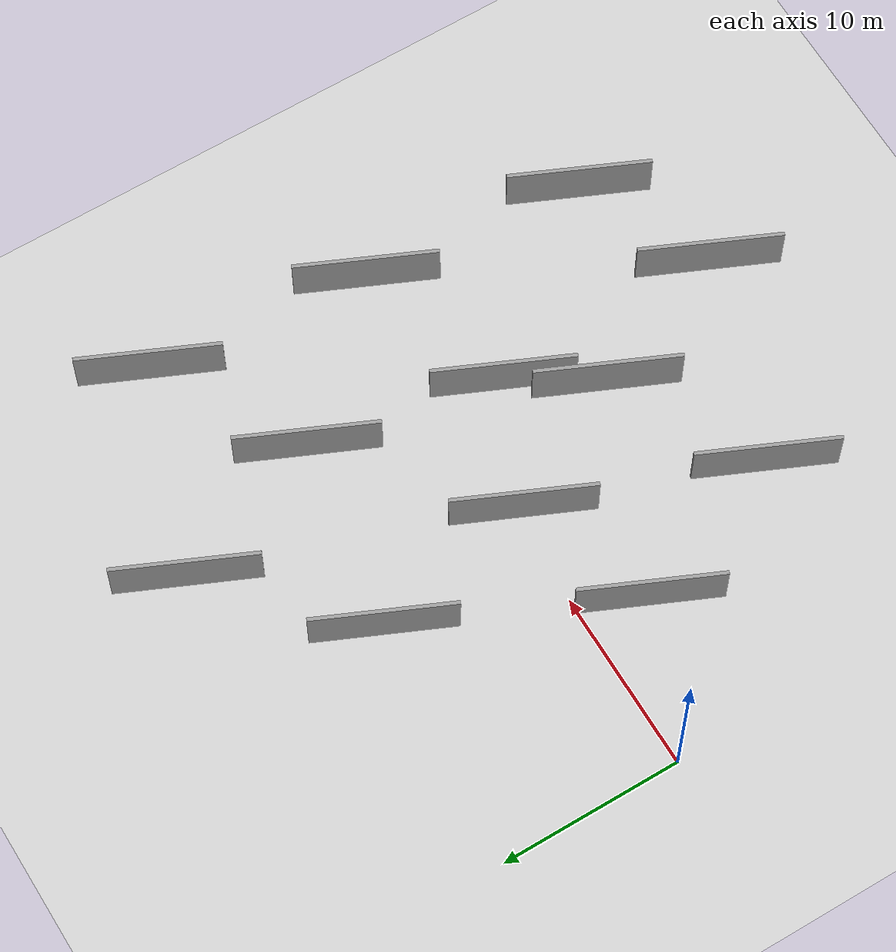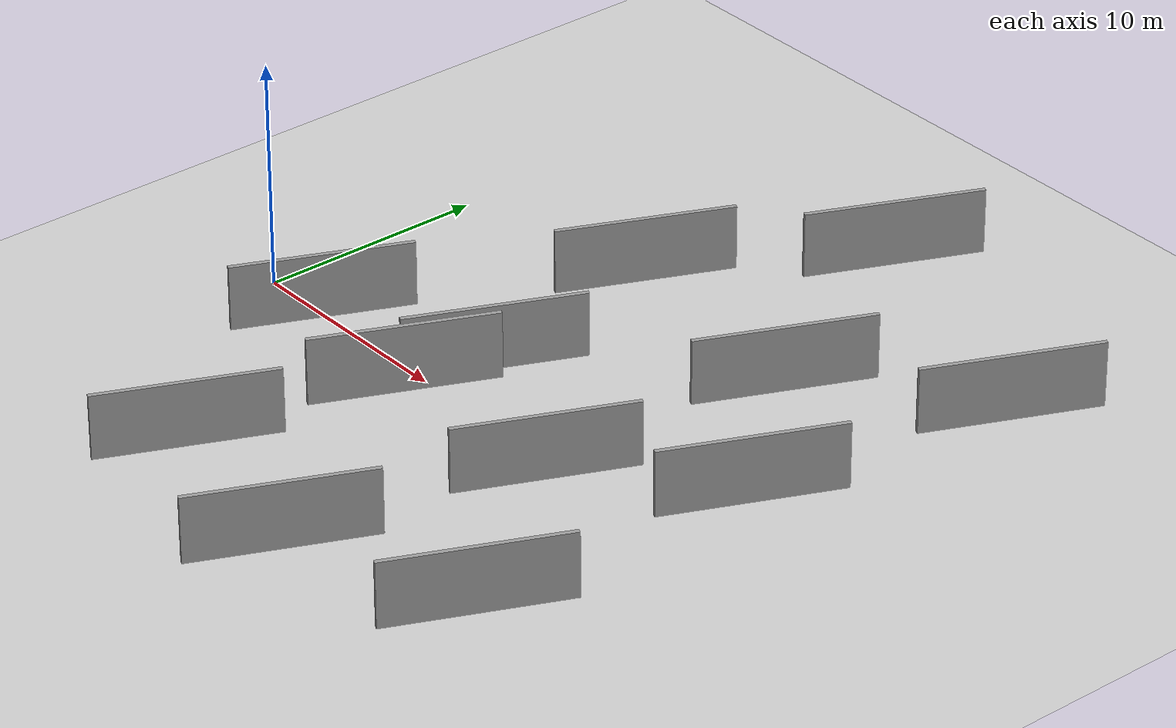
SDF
<sdf version="1.6">
 <world name="default">
  <light name="sun" type="directional">
   <pose>0 0 10 0 -0 0</pose>
   <diffuse>0.8 0.8 0.8 1</diffuse>
   <specular>0.2 0.2 0.2 1</specular>
   <attenuation>
    <range>1000</range>
    <constant>0.9</constant>
    <linear>0.01</linear>
    <quadratic>0.001</quadratic>
   </attenuation>
   <direction>-0.5 0.1 -0.9</direction>
  </light>
  <model name="ground_plane">
   <static>1</static>
   <link name="link">
    <collision name="collision">
     <geometry><plane><normal>0 0 1</normal><size>100 100</size></plane></geometry>
     <surface>
      <contact><collide_bitmask>65535</collide_bitmask></contact>
      <friction><ode><mu>100</mu><mu2>50</mu2></ode></friction>
     </surface>
    </collision>
    <visual name="visual">
     <cast_shadows>0</cast_shadows>
     <geometry><plane><normal>0 0 1</normal><size>100 100</size></plane></geometry>
     <material>
      <script><uri>file://media/materials/scripts/gazebo.material</uri><name>Gazebo/Grey</name></script>
     </material>
    </visual>
   </link>
  </model>
  <gravity>0 0 -9.8</gravity>
  <magnetic_field>6e-06 2.3e-05 -4.2e-05</magnetic_field>
  <atmosphere type="adiabatic"/>
  <physics name="default_physics" default="0" type="ode">
   <max_step_size>0.001</max_step_size>
   <real_time_factor>1</real_time_factor>
   <real_time_update_rate>1000</real_time_update_rate>
  </physics>
  <scene><ambient>0.4 0.4 0.4 1</ambient><background>0.7 0.7 0.7 1</background><shadows>1</shadows></scene>
  <spherical_coordinates>
   <surface_model>EARTH_WGS84</surface_model>
   <latitude_deg>0</latitude_deg>
   <longitude_deg>0</longitude_deg>
   <elevation>0</elevation>
   <heading_deg>0</heading_deg>
  </spherical_coordinates>
  <model name="grey_wall">
   <static>1</static>
   <link name="link">
    <pose>0 0 1.4 0 -0 0</pose>
    <collision name="collision"><geometry><box><size>7.5 0.2 2.8</size></box></geometry></collision>
    <visual name="visual">
     <cast_shadows>0</cast_shadows>
     <geometry><box><size>7.5 0.2 2.8</size></box></geometry>
     <material>
      <script>
       <uri>model://grey_wall/materials/scripts</uri>
       <uri>model://grey_wall/materials/textures</uri>
       <name>vrc/grey_wall</name>
      </script>
     </material>
    </visual>
   </link>
   <pose>6.96939 -2.64592 2.67334 0 -0 1.14782</pose>
  </model>
  <model name="grey_wall_clone">
   <static>1</static>
   <link name="link">
    <pose>0 0 1.4 0 -0 0</pose>
    <collision name="collision"><geometry><box><size>7.5 0.2 2.8</size></box></geometry></collision>
    <visual name="visual">
     <cast_shadows>0</cast_shadows>
     <geometry><box><size>7.5 0.2 2.8</size></box></geometry>
     <material>
      <script>
       <uri>model://grey_wall/materials/scripts</uri>
       <uri>model://grey_wall/materials/textures</uri>
       <name>vrc/grey_wall</name>
      </script>
     </material>
    </visual>
   </link>
   <pose>14.2363 0.173516 2.60655 0 -0 1.14782</pose>
  </model>
  <model name="grey_wall_clone_0">
   <static>1</static>
   <link name="link">
    <pose>0 0 1.4 0 -0 0</pose>
    <collision name="collision"><geometry><box><size>7.5 0.2 2.8</size></box></geometry></collision>
    <visual name="visual">
     <cast_shadows>0</cast_shadows>
     <geometry><box><size>7.5 0.2 2.8</size></box></geometry>
     <material>
      <script>
       <uri>model://grey_wall/materials/scripts</uri>
       <uri>model://grey_wall/materials/textures</uri>
       <name>vrc/grey_wall</name>
      </script>
     </material>
    </visual>
   </link>
   <pose>16.9381 -6.27365 5.41636 0 -0 1.14782</pose>
  </model>
  <model name="grey_wall_clone_1">
   <static>1</static>
   <link name="link">
    <pose>0 0 1.4 0 -0 0</pose>
    <collision name="collision"><geometry><box><size>7.5 0.2 2.8</size></box></geometry></collision>
    <visual name="visual">
     <cast_shadows>0</cast_shadows>
     <geometry><box><size>7.5 0.2 2.8</size></box></geometry>
     <material>
      <script>
       <uri>model://grey_wall/materials/scripts</uri>
       <uri>model://grey_wall/materials/textures</uri>
       <name>vrc/grey_wall</name>
      </script>
     </material>
    </visual>
   </link>
   <pose>20.9967 -2.80191 2.08586 0 -0 1.14782</pose>
  </model>
  <model name="grey_wall_clone_2">
   <static>1</static>
   <link name="link">
    <pose>0 0 1.4 0 -0 0</pose>
    <collision name="collision"><geometry><box><size>7.5 0.2 2.8</size></box></geometry></collision>
    <visual name="visual">
     <cast_shadows>0</cast_shadows>
     <geometry><box><size>7.5 0.2 2.8</size></box></geometry>
     <material>
      <script>
       <uri>model://grey_wall/materials/scripts</uri>
       <uri>model://grey_wall/materials/textures</uri>
       <name>vrc/grey_wall</name>
      </script>
     </material>
    </visual>
   </link>
   <pose>10.3632 -11.6705 1.97917 0 -0 1.14782</pose>
  </model>
  <model name="grey_wall_clone_3">
   <static>1</static>
   <link name="link">
    <pose>0 0 1.4 0 -0 0</pose>
    <collision name="collision"><geometry><box><size>7.5 0.2 2.8</size></box></geometry></collision>
    <visual name="visual">
     <cast_shadows>0</cast_shadows>
     <geometry><box><size>7.5 0.2 2.8</size></box></geometry>
     <material>
      <script>
       <uri>model://grey_wall/materials/scripts</uri>
       <uri>model://grey_wall/materials/textures</uri>
       <name>vrc/grey_wall</name>
      </script>
     </material>
    </visual>
   </link>
   <pose>20.6624 -14.7976 3.84518 0 -0 1.14782</pose>
  </model>
  <model name="grey_wall_clone_4">
   <static>1</static>
   <link name="link">
    <pose>0 0 1.4 0 -0 0</pose>
    <collision name="collision"><geometry><box><size>7.5 0.2 2.8</size></box></geometry></collision>
    <visual name="visual">
     <cast_shadows>0</cast_shadows>
     <geometry><box><size>7.5 0.2 2.8</size></box></geometry>
     <material>
      <script>
       <uri>model://grey_wall/materials/scripts</uri>
       <uri>model://grey_wall/materials/textures</uri>
       <name>vrc/grey_wall</name>
      </script>
     </material>
    </visual>
   </link>
   <pose>27.8849 -11.5376 3.38708 0 -0 1.14782</pose>
  </model>
  <model name="grey_wall_clone_5">
   <static>1</static>
   <link name="link">
    <pose>0 0 1.4 0 -0 0</pose>
    <collision name="collision"><geometry><box><size>7.5 0.2 2.8</size></box></geometry></collision>
    <visual name="visual">
     <cast_shadows>0</cast_shadows>
     <geometry><box><size>7.5 0.2 2.8</size></box></geometry>
     <material>
      <script>
       <uri>model://grey_wall/materials/scripts</uri>
       <uri>model://grey_wall/materials/textures</uri>
       <name>vrc/grey_wall</name>
      </script>
     </material>
    </visual>
   </link>
   <pose>28.9284 0.493153 3.63653 0 -0 1.14782</pose>
  </model>
  <model name="grey_wall_clone_6">
   <static>1</static>
   <link name="link">
    <pose>0 0 1.4 0 -0 0</pose>
    <collision name="collision"><geometry><box><size>7.5 0.2 2.8</size></box></geometry></collision>
    <visual name="visual">
     <cast_shadows>0</cast_shadows>
     <geometry><box><size>7.5 0.2 2.8</size></box></geometry>
     <material>
      <script>
       <uri>model://grey_wall/materials/scripts</uri>
       <uri>model://grey_wall/materials/textures</uri>
       <name>vrc/grey_wall</name>
      </script>
     </material>
    </visual>
   </link>
   <pose>22.6723 7.61697 2.67166 0 -0 1.14782</pose>
  </model>
  <model name="grey_wall_clone_7">
   <static>1</static>
   <link name="link">
    <pose>0 0 1.4 0 -0 0</pose>
    <collision name="collision"><geometry><box><size>7.5 0.2 2.8</size></box></geometry></collision>
    <visual name="visual">
     <cast_shadows>0</cast_shadows>
     <geometry><box><size>7.5 0.2 2.8</size></box></geometry>
     <material>
      <script>
       <uri>model://grey_wall/materials/scripts</uri>
       <uri>model://grey_wall/materials/textures</uri>
       <name>vrc/grey_wall</name>
      </script>
     </material>
    </visual>
   </link>
   <pose>12.4815 9.23465 2.3735 0 -0 1.14782</pose>
  </model>
  <model name="grey_wall_clone_8">
   <static>1</static>
   <link name="link">
    <pose>0 0 1.4 0 -0 0</pose>
    <collision name="collision"><geometry><box><size>7.5 0.2 2.8</size></box></geometry></collision>
    <visual name="visual">
     <cast_shadows>0</cast_shadows>
     <geometry><box><size>7.5 0.2 2.8</size></box></geometry>
     <material>
      <script>
       <uri>model://grey_wall/materials/scripts</uri>
       <uri>model://grey_wall/materials/textures</uri>
       <name>vrc/grey_wall</name>
      </script>
     </material>
    </visual>
   </link>
   <pose>19.2754 16.3521 3.52151 0 -0 1.14782</pose>
  </model>
  <model name="grey_wall_clone_9">
   <static>1</static>
   <link name="link">
    <pose>0 0 1.4 0 -0 0</pose>
    <collision name="collision"><geometry><box><size>7.5 0.2 2.8</size></box></geometry></collision>
    <visual name="visual">
     <cast_shadows>0</cast_shadows>
     <geometry><box><size>7.5 0.2 2.8</size></box></geometry>
     <material>
      <script>
       <uri>model://grey_wall/materials/scripts</uri>
       <uri>model://grey_wall/materials/textures</uri>
       <name>vrc/grey_wall</name>
      </script>
     </material>
    </visual>
   </link>
   <pose>30.2754 12.3079 3.15287 0 -0 1.14782</pose>
  </model>
 </world>
</sdf>
